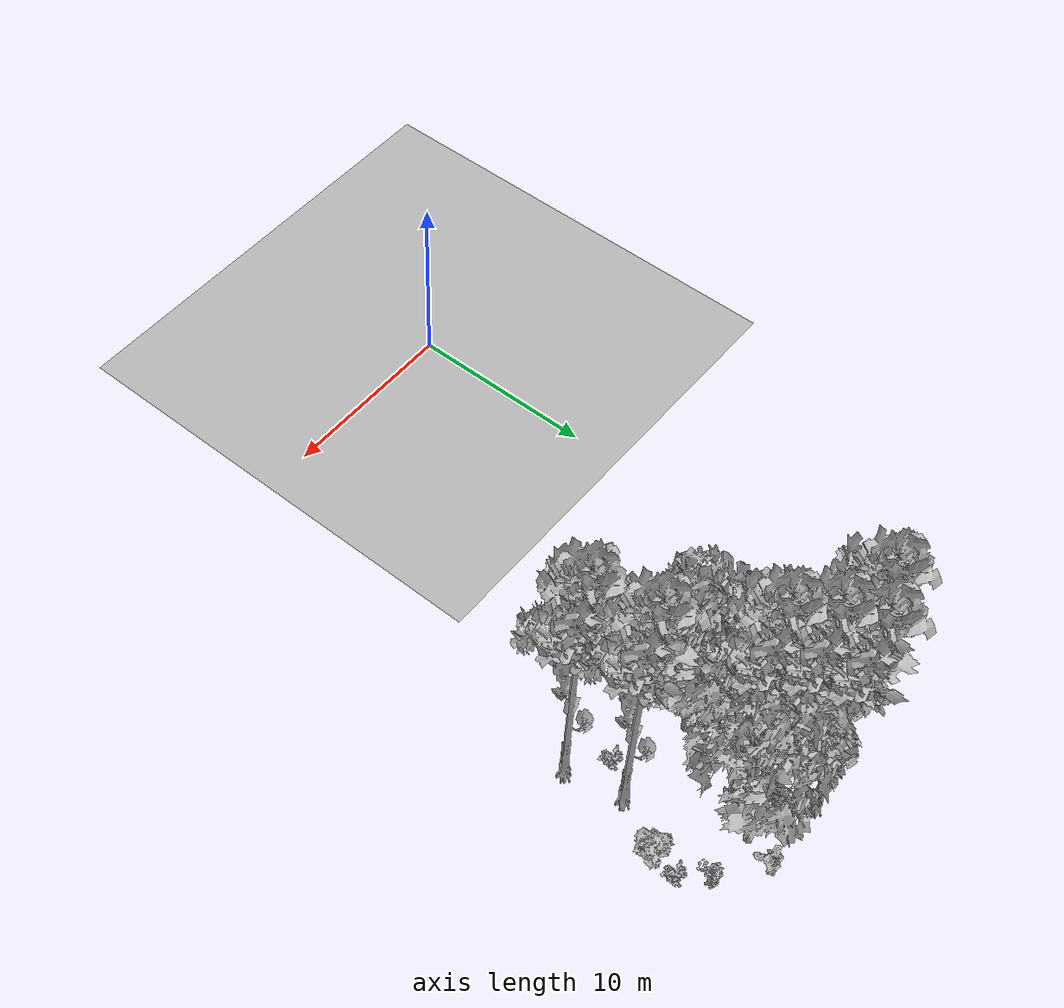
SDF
<sdf version="1.7">
 <world name="default">
  <model name="ground_plane">
   <static>1</static>
   <link name="link">
    <collision name="collision">
     <pose>-50 0 0 0 -0 0</pose>
     <geometry><plane><normal>0 0 1</normal><size>80 80</size></plane></geometry>
     <surface><contact><ode><min_depth>0.01</min_depth><max_vel>0</max_vel></ode></contact></surface>
    </collision>
    <visual name="grass">
     <cast_shadows>0</cast_shadows>
     <geometry>
      <mesh>
       <scale>0.46714285714285714 0.46714285714285714 0.1</scale>
       <uri>file://grass_plane/meshes/grass_plane.dae</uri>
      </mesh>
     </geometry>
    </visual>
   </link>
  </model>
  <model name="Tree 7">
   <static>1</static>
   <pose>14.9944397645475 24.28028591137172 0 1.57079 -0 0</pose>
   <link name="link">
    <collision name="collision">
     <geometry><mesh><scale>3.5 5 3.5</scale><uri>model://tree_9/meshes/tree_9.obj</uri></mesh></geometry>
    </collision>
    <visual name="visual">
     <geometry><mesh><scale>3.5 5 3.5</scale><uri>model://tree_9/meshes/tree_9.obj</uri></mesh></geometry>
    </visual>
   </link>
  </model>
  <model name="Tree 13">
   <static>1</static>
   <pose>11.686338561412157 27.977618921284602 0 1.57079 -0 0</pose>
   <link name="link">
    <collision name="collision">
     <geometry><mesh><scale>3.5 5 3.5</scale><uri>model://tree_9/meshes/tree_9.obj</uri></mesh></geometry>
    </collision>
    <visual name="visual">
     <geometry><mesh><scale>3.5 5 3.5</scale><uri>model://tree_9/meshes/tree_9.obj</uri></mesh></geometry>
    </visual>
   </link>
  </model>
  <model name="Tree 47">
   <static>1</static>
   <pose>10.513963513210818 29.501446716106955 0 1.57079 -0 0</pose>
   <link name="link">
    <collision name="collision">
     <geometry><mesh><scale>3.5 5 3.5</scale><uri>model://tree_9/meshes/tree_9.obj</uri></mesh></geometry>
    </collision>
    <visual name="visual">
     <geometry><mesh><scale>3.5 5 3.5</scale><uri>model://tree_9/meshes/tree_9.obj</uri></mesh></geometry>
    </visual>
   </link>
  </model>
  <model name="Tree 155">
   <static>1</static>
   <pose>7.583759504921396 30.107653073424643 0 1.57079 -0 0</pose>
   <link name="link">
    <collision name="collision">
     <geometry><mesh><scale>3.5 5 3.5</scale><uri>model://tree_9/meshes/tree_9.obj</uri></mesh></geometry>
    </collision>
    <visual name="visual">
     <geometry><mesh><scale>3.5 5 3.5</scale><uri>model://tree_9/meshes/tree_9.obj</uri></mesh></geometry>
    </visual>
   </link>
  </model>
  <model name="Tree 193">
   <static>1</static>
   <pose>13.058899555847447 29.7056331556918 0 1.57079 -0 0</pose>
   <link name="link">
    <collision name="collision">
     <geometry><mesh><scale>3.5 5 3.5</scale><uri>model://tree_2/meshes/tree_2.obj</uri></mesh></geometry>
    </collision>
    <visual name="visual">
     <geometry><mesh><scale>3.5 5 3.5</scale><uri>model://tree_2/meshes/tree_2.obj</uri></mesh></geometry>
    </visual>
   </link>
  </model>
  <model name="Tree 208">
   <static>1</static>
   <pose>9.727082142425004 31.1161731886109 0 1.57079 -0 0</pose>
   <link name="link">
    <collision name="collision">
     <geometry><mesh><scale>3.5 5 3.5</scale><uri>model://tree_9/meshes/tree_9.obj</uri></mesh></geometry>
    </collision>
    <visual name="visual">
     <geometry><mesh><scale>3.5 5 3.5</scale><uri>model://tree_9/meshes/tree_9.obj</uri></mesh></geometry>
    </visual>
   </link>
  </model>
  <model name="Tree 226">
   <static>1</static>
   <pose>10.272212640557264 24.330405624048765 0 1.57079 -0 0</pose>
   <link name="link">
    <collision name="collision">
     <geometry><mesh><scale>3.5 5 3.5</scale><uri>model://tree_2/meshes/tree_2.obj</uri></mesh></geometry>
    </collision>
    <visual name="visual">
     <geometry><mesh><scale>3.5 5 3.5</scale><uri>model://tree_2/meshes/tree_2.obj</uri></mesh></geometry>
    </visual>
   </link>
  </model>
  <model name="Tree 292">
   <static>1</static>
   <pose>15.615480226433867 21.374622937136188 0 1.57079 -0 0</pose>
   <link name="link">
    <collision name="collision">
     <geometry><mesh><scale>3.5 5 3.5</scale><uri>model://tree_9/meshes/tree_9.obj</uri></mesh></geometry>
    </collision>
    <visual name="visual">
     <geometry><mesh><scale>3.5 5 3.5</scale><uri>model://tree_9/meshes/tree_9.obj</uri></mesh></geometry>
    </visual>
   </link>
  </model>
  <model name="Tree 306">
   <static>1</static>
   <pose>9.063522008978936 27.349375019656904 0 1.57079 -0 0</pose>
   <link name="link">
    <collision name="collision">
     <geometry><mesh><scale>3.5 5 3.5</scale><uri>model://tree_2/meshes/tree_2.obj</uri></mesh></geometry>
    </collision>
    <visual name="visual">
     <geometry><mesh><scale>3.5 5 3.5</scale><uri>model://tree_2/meshes/tree_2.obj</uri></mesh></geometry>
    </visual>
   </link>
  </model>
  <model name="Bush 38">
   <static>1</static>
   <pose>13.752074190629592 22.664918635316724 0 1.57079 -0 0</pose>
   <link name="link">
    <collision name="collision">
     <geometry><mesh><scale>2 2 2</scale><uri>model://bush_2/meshes/bush_2.obj</uri></mesh></geometry>
     <surface><contact><collide_without_contact>false</collide_without_contact></contact></surface>
    </collision>
    <visual name="visual">
     <geometry><mesh><scale>2 2 2</scale><uri>model://bush_2/meshes/bush_2.obj</uri></mesh></geometry>
    </visual>
   </link>
  </model>
  <model name="Bush 117">
   <static>1</static>
   <pose>7.335988483893722 26.853500221076615 0 1.57079 -0 0</pose>
   <link name="link">
    <collision name="collision">
     <geometry><mesh><scale>2 2 2</scale><uri>model://bush_4/meshes/bush_4.obj</uri></mesh></geometry>
     <surface><contact><collide_without_contact>false</collide_without_contact></contact></surface>
    </collision>
    <visual name="visual">
     <geometry><mesh><scale>2 2 2</scale><uri>model://bush_4/meshes/bush_4.obj</uri></mesh></geometry>
    </visual>
   </link>
  </model>
  <model name="Bush 134">
   <static>1</static>
   <pose>16.008600694957345 29.76163604085744 0 1.57079 -0 0</pose>
   <link name="link">
    <collision name="collision">
     <geometry><mesh><scale>2 2 2</scale><uri>model://bush_5/meshes/bush_5.obj</uri></mesh></geometry>
     <surface><contact><collide_without_contact>false</collide_without_contact></contact></surface>
    </collision>
    <visual name="visual">
     <geometry><mesh><scale>2 2 2</scale><uri>model://bush_5/meshes/bush_5.obj</uri></mesh></geometry>
    </visual>
   </link>
  </model>
  <model name="Bush 144">
   <static>1</static>
   <pose>13.843539449406784 31.26449044444081 0 1.57079 -0 0</pose>
   <link name="link">
    <collision name="collision">
     <geometry><mesh><scale>2 2 2</scale><uri>model://bush_0/meshes/bush_0.obj</uri></mesh></geometry>
     <surface><contact><collide_without_contact>false</collide_without_contact></contact></surface>
    </collision>
    <visual name="visual">
     <geometry><mesh><scale>2 2 2</scale><uri>model://bush_0/meshes/bush_0.obj</uri></mesh></geometry>
    </visual>
   </link>
  </model>
  <model name="Bush 176">
   <static>1</static>
   <pose>16.496737176066738 26.76606386538093 0 1.57079 -0 0</pose>
   <link name="link">
    <collision name="collision">
     <geometry><mesh><scale>2 2 2</scale><uri>model://bush_1/meshes/bush_1.obj</uri></mesh></geometry>
     <surface><contact><collide_without_contact>false</collide_without_contact></contact></surface>
    </collision>
    <visual name="visual">
     <geometry><mesh><scale>2 2 2</scale><uri>model://bush_1/meshes/bush_1.obj</uri></mesh></geometry>
    </visual>
   </link>
  </model>
  <model name="Bush 204">
   <static>1</static>
   <pose>7.1473374388891315 27.644499805830975 0 1.57079 -0 0</pose>
   <link name="link">
    <collision name="collision">
     <geometry><mesh><scale>2 2 2</scale><uri>model://bush_2/meshes/bush_2.obj</uri></mesh></geometry>
     <surface><contact><collide_without_contact>false</collide_without_contact></contact></surface>
    </collision>
    <visual name="visual">
     <geometry><mesh><scale>2 2 2</scale><uri>model://bush_2/meshes/bush_2.obj</uri></mesh></geometry>
    </visual>
   </link>
  </model>
  <model name="Bush 236">
   <static>1</static>
   <pose>9.754038435255417 23.988750654379814 0 1.57079 -0 0</pose>
   <link name="link">
    <collision name="collision">
     <geometry><mesh><scale>2 2 2</scale><uri>model://bush_1/meshes/bush_1.obj</uri></mesh></geometry>
     <surface><contact><collide_without_contact>false</collide_without_contact></contact></surface>
    </collision>
    <visual name="visual">
     <geometry><mesh><scale>2 2 2</scale><uri>model://bush_1/meshes/bush_1.obj</uri></mesh></geometry>
    </visual>
   </link>
  </model>
  <model name="Bush 353">
   <static>1</static>
   <pose>10.796481083658882 22.22757592192943 0 1.57079 -0 0</pose>
   <link name="link">
    <collision name="collision">
     <geometry><mesh><scale>2 2 2</scale><uri>model://bush_5/meshes/bush_5.obj</uri></mesh></geometry>
     <surface><contact><collide_without_contact>false</collide_without_contact></contact></surface>
    </collision>
    <visual name="visual">
     <geometry><mesh><scale>2 2 2</scale><uri>model://bush_5/meshes/bush_5.obj</uri></mesh></geometry>
    </visual>
   </link>
  </model>
  <model name="Bush 387">
   <static>1</static>
   <pose>10.05655259590062 30.06964999242969 0 1.57079 -0 0</pose>
   <link name="link">
    <collision name="collision">
     <geometry><mesh><scale>2 2 2</scale><uri>model://bush_2/meshes/bush_2.obj</uri></mesh></geometry>
     <surface><contact><collide_without_contact>false</collide_without_contact></contact></surface>
    </collision>
    <visual name="visual">
     <geometry><mesh><scale>2 2 2</scale><uri>model://bush_2/meshes/bush_2.obj</uri></mesh></geometry>
    </visual>
   </link>
  </model>
  <model name="Bush 409">
   <static>1</static>
   <pose>16.51756409525072 28.210379096087067 0 1.57079 -0 0</pose>
   <link name="link">
    <collision name="collision">
     <geometry><mesh><scale>2 2 2</scale><uri>model://bush_2/meshes/bush_2.obj</uri></mesh></geometry>
     <surface><contact><collide_without_contact>false</collide_without_contact></contact></surface>
    </collision>
    <visual name="visual">
     <geometry><mesh><scale>2 2 2</scale><uri>model://bush_2/meshes/bush_2.obj</uri></mesh></geometry>
    </visual>
   </link>
  </model>
  <model name="Bush 576">
   <static>1</static>
   <pose>6.712679499231406 22.561584123700257 0 1.57079 -0 0</pose>
   <link name="link">
    <collision name="collision">
     <geometry><mesh><scale>2 2 2</scale><uri>model://bush_2/meshes/bush_2.obj</uri></mesh></geometry>
     <surface><contact><collide_without_contact>false</collide_without_contact></contact></surface>
    </collision>
    <visual name="visual">
     <geometry><mesh><scale>2 2 2</scale><uri>model://bush_2/meshes/bush_2.obj</uri></mesh></geometry>
    </visual>
   </link>
  </model>
  <model name="Bush 583">
   <static>1</static>
   <pose>9.320819126817774 27.219202666031478 0 1.57079 -0 0</pose>
   <link name="link">
    <collision name="collision">
     <geometry><mesh><scale>2 2 2</scale><uri>model://bush_2/meshes/bush_2.obj</uri></mesh></geometry>
     <surface><contact><collide_without_contact>false</collide_without_contact></contact></surface>
    </collision>
    <visual name="visual">
     <geometry><mesh><scale>2 2 2</scale><uri>model://bush_2/meshes/bush_2.obj</uri></mesh></geometry>
    </visual>
   </link>
  </model>
  <model name="Bush 635">
   <static>1</static>
   <pose>9.181659211565936 22.935738826717483 0 1.57079 -0 0</pose>
   <link name="link">
    <collision name="collision">
     <geometry><mesh><scale>2 2 2</scale><uri>model://bush_2/meshes/bush_2.obj</uri></mesh></geometry>
     <surface><contact><collide_without_contact>false</collide_without_contact></contact></surface>
    </collision>
    <visual name="visual">
     <geometry><mesh><scale>2 2 2</scale><uri>model://bush_2/meshes/bush_2.obj</uri></mesh></geometry>
    </visual>
   </link>
  </model>
 </world>
</sdf>
